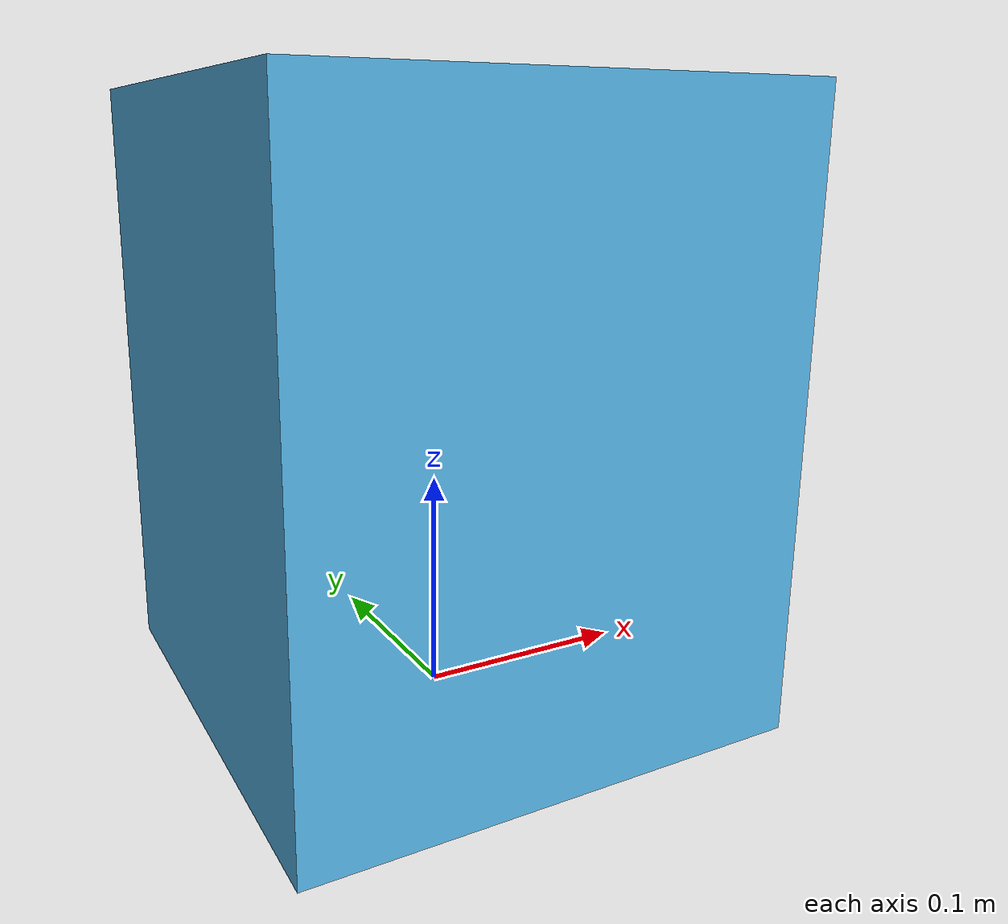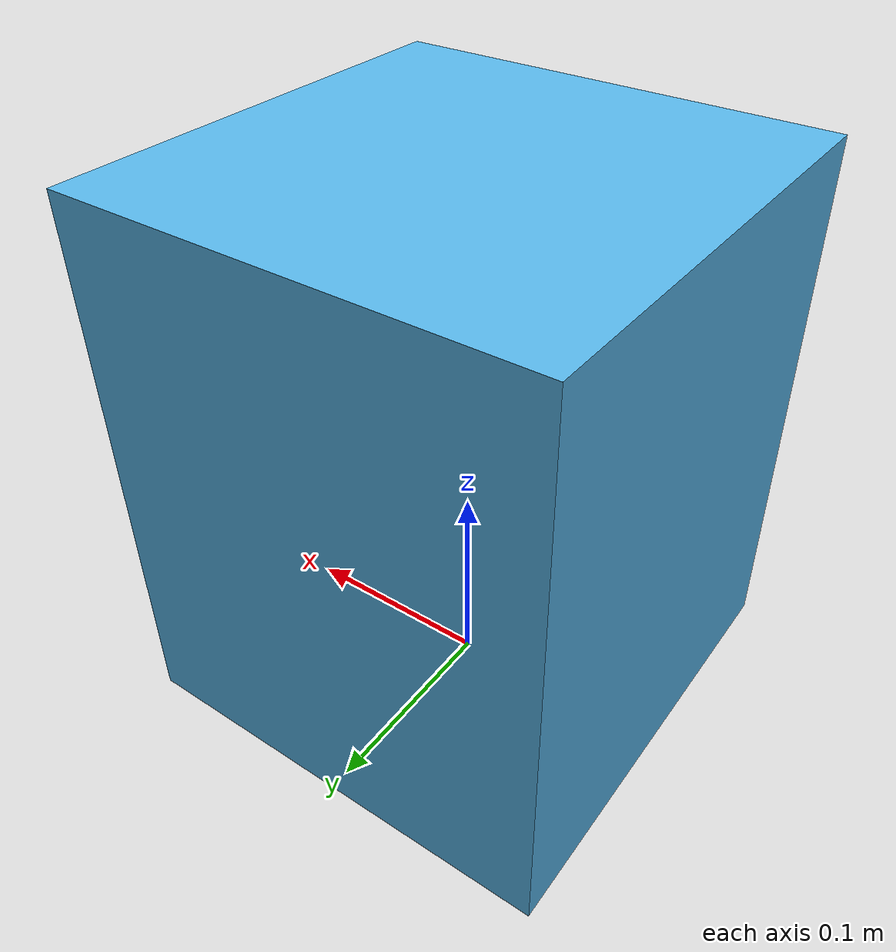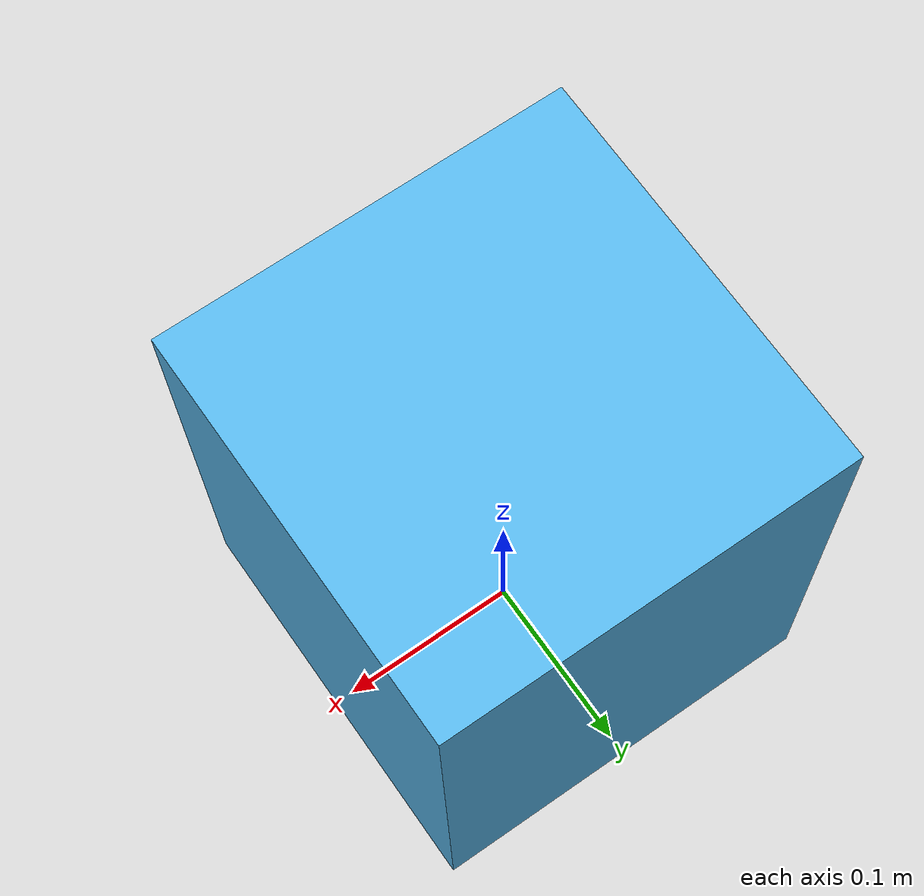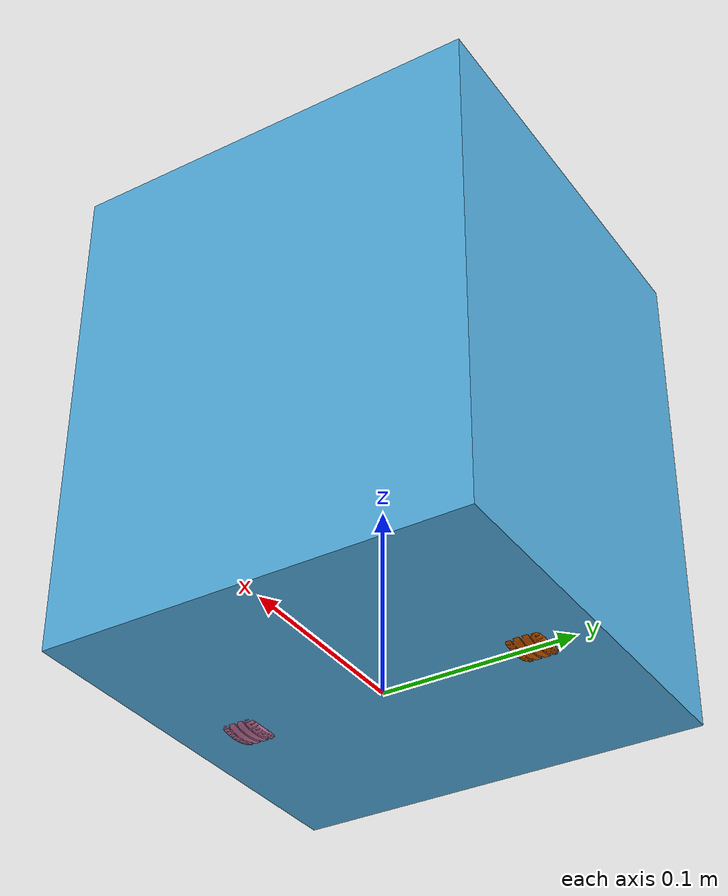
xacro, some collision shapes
<?xml version="1.0" ?>
<robot name="cube_petit" xmlns:xacro="http://ros.org/wiki/xacro">
  <link name="base_link"/>
  <joint name="body_joint" type="fixed">
    <parent link="base_link"/>
    <child link="body_link"/>
    <origin rpy="0 0 0" xyz="0 0 0"/>
  </joint>
  <link name="body_link">
    <visual>
      <origin rpy="0 0 0" xyz="0 0 0"/>
      <geometry>
    	  <mesh filename="package://cube_petit_description/meshes/cube_petit/cube_petit_body.obj"/>
      </geometry>
    </visual>
    <collision>
      <origin rpy="0 0 0" xyz="0 0 0.13725"/>
      <geometry>
        <box size="0.221 0.2225 0.2705"/>
      </geometry>
    </collision>
    <inertial>
      <origin rpy="0 0 0" xyz="0.01106693 0.00303088 0.15301422"/>
      <mass value="1.90110607"/>
      <inertia
        ixx="0.02115309"
        ixy="-0.00032189" iyy="0.02171733"
        ixz="0.00013005" iyz="0.00005398" izz="0.02025409"/>
    </inertial>
  </link>
  <gazebo reference="body_link">
    <selfCollide>false</selfCollide>
    <maxContacts>4</maxContacts>
    <mu1 value="0.0"/>
    <kp value="150000"/>
    <kd value="0"/>
  </gazebo>

  <joint name="laser_joint" type="fixed">
    <parent link="body_link"/>
    <child link="pacecat_link"/>
    <origin rpy="0 0 3.14159" xyz="0.0 0 0.23975"/>
  </joint>
  <link name="pacecat_link">
    <inertial>
      <origin rpy="0 0 0" xyz="0.00000000 0.00000000 0.00208424"/>
      <mass value="0.11166745"/>
      <inertia
        ixx="0.004391"
        ixy="0.000000" iyy="0.004391"
        ixz="0.000000" iyz="0.000000" izz="0.004277"/>
    </inertial>
    <visual>
      <origin rpy="0 0 0" xyz="0 0 0"/>
      <geometry>
        <cylinder length="0.0315" radius="0.025"/>
      </geometry>
      <material name="red"/>
    </visual>
    <collision>
      <origin rpy="0 0 0" xyz="0 0 0"/>
      <geometry>
        <cylinder length="0.0315" radius="0.025"/>
      </geometry>
    </collision>
  </link>
  <gazebo reference="pacecat_link">
    <mu1 value="0.5"/>
    <kp value="50000"/>
    <kd value="0"/>
    <sensor type="ray" name="pacecat">
      <pose>0 0 0 0 0 0</pose>
      <visualize>false</visualize>
      <update_rate>10</update_rate>
      <ray>
        <scan>
          <horizontal>
            <samples>400</samples>
            <resolution>1</resolution>
            <min_angle>${radians(-180)}</min_angle>
            <max_angle>${radians( 180)}</max_angle>
          </horizontal>
        </scan>
        <range>
          <min>0.16</min>
          <max>20.0</max>
          <resolution>0.01</resolution>
        </range>
        <noise>
          <type>gaussian</type>
          <mean>0.0</mean>
          <stddev>0.01</stddev>
        </noise>
      </ray>
      <plugin name="gazebo_ros_lidar_controller" filename="libgazebo_ros_laser.so">
        <topicName>/pacecat/scan</topicName>
        <frameName>pacecat_link</frameName>
      </plugin>
    </sensor>
  </gazebo>

  <joint name="depth_joint" type="fixed">
    <parent link="body_link"/>
    <child link="camera_link"/>
    <origin rpy="0 0.0034 0" xyz="0.10137 0.0 0.10306"/>
  </joint>
  <link name="camera_link">
    <inertial>
      <origin rpy="0 0 0" xyz="0.00000000 0.00000000 0.0000000"/>
      <mass value="0.11166745"/>
      <inertia
        ixx="0.004391"
        ixy="0.000000" iyy="0.004391"
        ixz="0.000000" iyz="0.000000" izz="0.004277"/>
    </inertial>
    <visual>
      <origin rpy="0 0 0" xyz="0 0 0"/>
      <geometry>
        <cylinder length="0.001" radius="0.001"/>
      </geometry>
      <material name="red"/>
    </visual>
    <collision>
      <origin rpy="0 0 0" xyz="0 0 0"/>
      <geometry>
        <cylinder length="0.001" radius="0.001"/>
      </geometry>
    </collision>
  </link>
  <gazebo reference="camera_link">
    <mu1 value="0.5"/>
    <kp value="50000"/>
    <kd value="0"/>
    <sensor type="depth" name="camera">
      <always_on>true</always_on>
      <update_rate>4.0</update_rate>
      <camera>
        <horizontal_fov>${60.0*3.1415926/180.0}</horizontal_fov>
        <image>
          <format>R8G8B8</format>
          <width>640</width>
          <height>480</height>
        </image>
        <clip>
          <near>0.2</near>
          <far>1.5</far>
        </clip>
      </camera>
      <plugin name="kinect_camera_controller" filename="libgazebo_ros_openni_kinect.so">
        <cameraName>camera</cameraName>
        <alwaysOn>true</alwaysOn>
        <updateRate>4</updateRate>
        <imageTopicName>camera/image_color</imageTopicName>
        <depthImageTopicName>camera/image_depth_rect</depthImageTopicName>
        <pointCloudTopicName>camera/points</pointCloudTopicName>
        <cameraInfoTopicName>camera/camera_info</cameraInfoTopicName>
        <frameName>camera_optical_link</frameName>
        <pointCloudCutoff>0.2</pointCloudCutoff>
        <pointCloudCutoffMax>1.5</pointCloudCutoffMax>
        <baseline>0.1</baseline>
        <distortion_k1>0.0</distortion_k1>
        <distortion_k2>0.0</distortion_k2>
        <distortion_k3>0.0</distortion_k3>
        <distortion_t1>0.0</distortion_t1>
        <distortion_t2>0.0</distortion_t2>
      </plugin>
    </sensor>
  </gazebo>

  <joint name="depth_optical_joint" type="fixed">
    <parent link="camera_link"/>
    <child link="camera_optical_link"/>
    <origin rpy="-1.57 0 -1.57" xyz="0.0 0.0 0.0"/>
  </joint>
  <link name="camera_optical_link">
    <inertial>
      <origin rpy="0 0 0" xyz="0.00000000 0.00000000 0.0000000"/>
      <mass value="0.11166745"/>
      <inertia
        ixx="0.004391"
        ixy="0.000000" iyy="0.004391"
        ixz="0.000000" iyz="0.000000" izz="0.004277"/>
    </inertial>
    <visual>
      <origin rpy="0 0 0" xyz="0 0 0"/>
      <geometry>
        <cylinder length="0.001" radius="0.001"/>
      </geometry>
      <material name="red"/>
    </visual>
    <collision>
      <origin rpy="0 0 0" xyz="0 0 0"/>
      <geometry>
        <cylinder length="0.001" radius="0.001"/>
      </geometry>
    </collision>
  </link>

  <joint name="left_wheel_joint" type="continuous">
    <origin rpy="0 0 0" xyz="-0.002 0.077 0.033"/>
    <parent link="body_link"/>
    <child link="left_wheel_link"/>
    <axis xyz="0 1 0"/>
  </joint>
  <transmission name="left_wheel_trans" type="SimpleTransmission">
    <type>transmission_interface/SimpleTransmission</type>
    <actuator name="left_wheel_motor">
      <mechanicalReduction>1</mechanicalReduction>
    </actuator>
    <joint name="left_wheel_joint">
      <hardwareInterface>hardware_interface/VelocityJointInterface</hardwareInterface>
    </joint>
  </transmission>
  <link name="left_wheel_link">
    <inertial>
      <origin rpy="0 0 0" xyz="-0.00000147 0.00093592 -0.00000239"/>
      <mass value="0.2986774"/>
      <inertia
        ixx="0.0001147"
        ixy="0.00000000" iyy="0.0002130"
        ixz="0.00000000" iyz="0.0000001" izz="0.0001148"/>
    </inertial>
    <visual>
    <origin rpy="-1.57079632679 0 0" xyz="0 0 0"/>
      <geometry>
	      <mesh filename="package://cube_petit_description/meshes/cube_petit/cube_petit_wheel.obj"/>
      </geometry>
    </visual>
    <collision>
      <origin rpy="1.57079632679 0 0" xyz="0 0 0"/>
      <geometry>
        <cylinder length="0.002" radius="0.033"/>
      </geometry>
    </collision>
  </link>
  <gazebo reference="left_wheel_link">
    <selfCollide>false</selfCollide>
    <maxContacts>2</maxContacts>
    <minDepth>0</minDepth>
    <mu1 value="2.5"/>
    <kp value="50000"/>
    <kd value="0"/>
  </gazebo>

  <joint name="right_wheel_joint" type="continuous">
    <origin rpy="0 0 0" xyz="-0.002 -0.077 0.033"/>
    <parent link="body_link"/>
    <child link="right_wheel_link"/>
    <axis xyz="0 1 0"/>
  </joint>
  <transmission name="right_wheel_trans" type="SimpleTransmission">
    <type>transmission_interface/SimpleTransmission</type>
    <actuator name="right_wheel_motor">
      <mechanicalReduction>1</mechanicalReduction>
    </actuator>
    <joint name="right_wheel_joint">
      <hardwareInterface>hardware_interface/VelocityJointInterface</hardwareInterface>
    </joint>
  </transmission>
  <link name="right_wheel_link">
    <inertial>
      <origin rpy="0 0 0" xyz="-0.00000147 0.00093592 -0.00000239"/>
      <mass value="0.2986774"/>
      <inertia
        ixx="0.0001147"
        ixy="0.00000000" iyy="0.0002130"
        ixz="0.00000000" iyz="0.0000001" izz="0.0001148"/>
    </inertial>
    <visual>
      <origin rpy="1.57079632679 0 0" xyz="0 0 0"/>
      <geometry>
        <mesh filename="package://cube_petit_description/meshes/cube_petit/cube_petit_wheel.obj"/>
      </geometry>
    </visual>
    <collision>
      <origin rpy="1.57079632679 0 0" xyz="0 0 0"/>
      <geometry>
        <cylinder length="0.002" radius="0.033"/>
      </geometry>
    </collision>
  </link>
  <gazebo reference="right_wheel_link">
    <selfCollide>false</selfCollide>
    <maxContacts>2</maxContacts>
    <minDepth>0</minDepth>
    <mu1 value="2.5"/>
    <kp value="50000"/>
    <kd value="0"/>
  </gazebo>

  <gazebo>
    <plugin name="gazebo_ros_control" filename="libgazebo_ros_control.so">
      <robotNamespace>/cube_petit</robotNamespace>
      <legacyModeNS>true</legacyModeNS>
    </plugin>
  </gazebo>
</robot>
